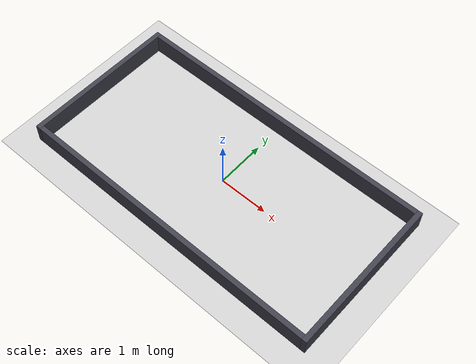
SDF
<?xml version="1.0"?>
<sdf version="1.6">
  <world name="three_lane_formation">
    <include><uri>model://ground_plane</uri></include>
    <include><uri>model://sun</uri></include>
    <gravity>0 0 -9.8</gravity>
    <physics name="default_physics" type="ode">
      <max_step_size>0.001</max_step_size>
      <real_time_update_rate>1000</real_time_update_rate>
    </physics>

    <model name="wall_west">
      <static>true</static><pose>-3.15 0 0.2 0 0 0</pose>
      <link name="link"><collision name="collision"><geometry><box><size>0.1 3.2 0.4</size></box></geometry></collision>
        <visual name="visual"><geometry><box><size>0.1 3.2 0.4</size></box></geometry><material><ambient>0.25 0.25 0.3 1</ambient><diffuse>0.25 0.25 0.3 1</diffuse></material></visual></link>
    </model>
    <model name="wall_east">
      <static>true</static><pose>3.15 0 0.2 0 0 0</pose>
      <link name="link"><collision name="collision"><geometry><box><size>0.1 3.2 0.4</size></box></geometry></collision>
        <visual name="visual"><geometry><box><size>0.1 3.2 0.4</size></box></geometry><material><ambient>0.25 0.25 0.3 1</ambient><diffuse>0.25 0.25 0.3 1</diffuse></material></visual></link>
    </model>
    <model name="wall_south">
      <static>true</static><pose>0 -1.55 0.2 0 0 0</pose>
      <link name="link"><collision name="collision"><geometry><box><size>6.2 0.1 0.4</size></box></geometry></collision>
        <visual name="visual"><geometry><box><size>6.2 0.1 0.4</size></box></geometry><material><ambient>0.25 0.25 0.3 1</ambient><diffuse>0.25 0.25 0.3 1</diffuse></material></visual></link>
    </model>
    <model name="wall_north">
      <static>true</static><pose>0 1.55 0.2 0 0 0</pose>
      <link name="link"><collision name="collision"><geometry><box><size>6.2 0.1 0.4</size></box></geometry></collision>
        <visual name="visual"><geometry><box><size>6.2 0.1 0.4</size></box></geometry><material><ambient>0.25 0.25 0.3 1</ambient><diffuse>0.25 0.25 0.3 1</diffuse></material></visual></link>
    </model>
  </world>
</sdf>
